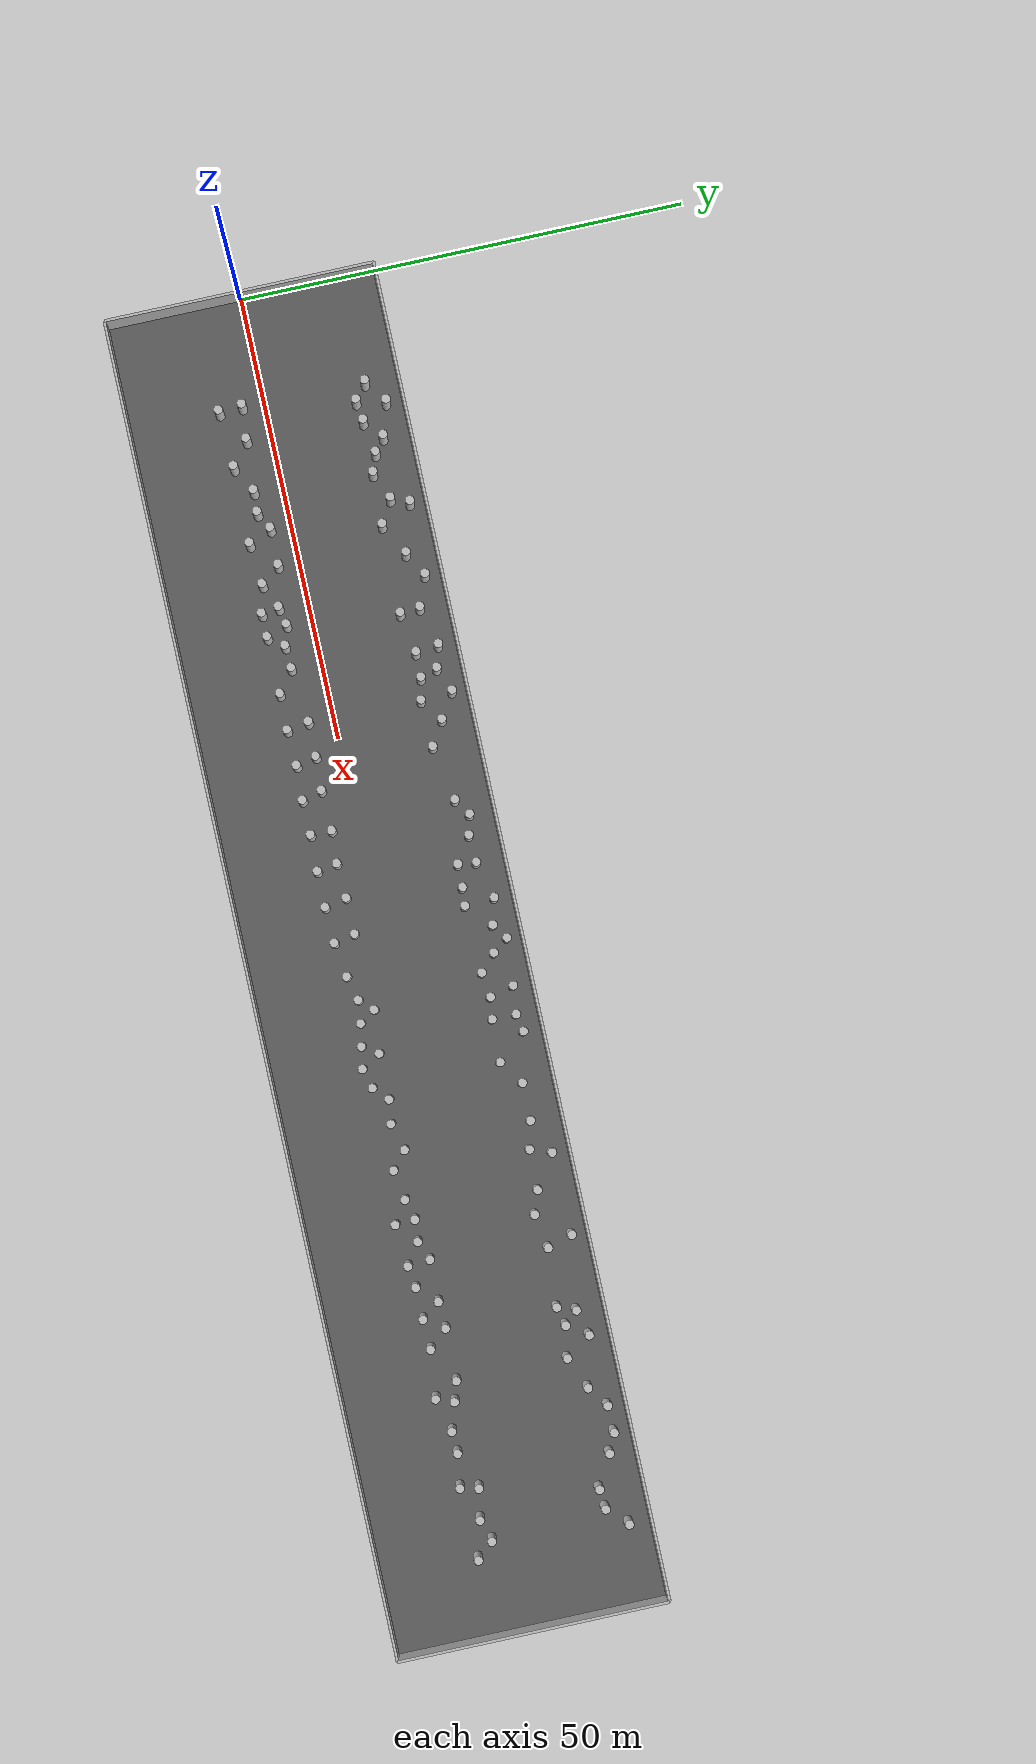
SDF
<?xml version="1.0" ?>
<sdf version="1.5">
  <world name="default">
    <plugin name="gazebo_ros_state" filename="libgazebo_ros_state.so">
      <ros>
        <namespace>/gazebo</namespace>
      </ros>
      <update_rate>20.0</update_rate>
    </plugin>

    <include><uri>model://sun</uri></include>
    <include><uri>model://ground_plane</uri></include>

    <model name="corridor_floor">
      <static>true</static>
      <pose>75 0 0.01 0 0 0</pose>
      <link name="link">
        <collision name="collision">
          <geometry><box><size>150 30 0.02</size></box></geometry>
        </collision>
        <visual name="visual">
          <geometry><box><size>150 30 0.02</size></box></geometry>
          <material>
            <ambient>0.25 0.25 0.25 1</ambient>
            <diffuse>0.35 0.35 0.35 1</diffuse>
          </material>
        </visual>
      </link>
    </model>

    <physics name="default_physics" default="0" type="ode">
      <gravity>0 0 -9.8066</gravity>
      <ode>
        <solver>
          <type>quick</type>
          <iters>10</iters>
          <sor>1.3</sor>
          <use_dynamic_moi_rescaling>0</use_dynamic_moi_rescaling>
        </solver>
        <constraints>
          <cfm>0</cfm>
          <erp>0.2</erp>
          <contact_max_correcting_vel>100</contact_max_correcting_vel>
          <contact_surface_layer>0.001</contact_surface_layer>
        </constraints>
      </ode>
      <max_step_size>0.004</max_step_size>
      <real_time_factor>1</real_time_factor>
      <real_time_update_rate>250</real_time_update_rate>
      <magnetic_field>6.0e-6 2.3e-5 -4.2e-5</magnetic_field>
    </physics>

    <model name="left_wall">
      <static>true</static>
      <pose>75 15.15 2.5 0 0 0</pose>
      <link name="link">
        <collision name="collision">
          <geometry><box><size>150 0.3 5</size></box></geometry>
        </collision>
        <visual name="visual">
          <geometry><box><size>150 0.3 5</size></box></geometry>
        </visual>
      </link>
    </model>

    <model name="right_wall">
      <static>true</static>
      <pose>75 -15.15 2.5 0 0 0</pose>
      <link name="link">
        <collision name="collision">
          <geometry><box><size>150 0.3 5</size></box></geometry>
        </collision>
        <visual name="visual">
          <geometry><box><size>150 0.3 5</size></box></geometry>
        </visual>
      </link>
    </model>

    <model name="start_wall">
      <static>true</static>
      <pose>0 0 2.5 0 0 0</pose>
      <link name="link">
        <collision name="collision">
          <geometry><box><size>0.3 30.3 5</size></box></geometry>
        </collision>
        <visual name="visual">
          <geometry><box><size>0.3 30.3 5</size></box></geometry>
        </visual>
      </link>
    </model>

    <model name="end_wall">
      <static>true</static>
      <pose>150 0 2.5 0 0 0</pose>
      <link name="link">
        <collision name="collision">
          <geometry><box><size>0.3 30.3 5</size></box></geometry>
        </collision>
        <visual name="visual">
          <geometry><box><size>0.3 30.3 5</size></box></geometry>
        </visual>
      </link>
    </model>

    <include><name>cylinder_000</name><uri>model://cylinder_r05_h5</uri><pose>24.073 -3.275 2.5 0 0 0</pose></include>
    <include><name>cylinder_001</name><uri>model://cylinder_r05_h5</uri><pose>15.930 -2.731 2.5 0 0 0</pose></include>
    <include><name>cylinder_002</name><uri>model://cylinder_r05_h5</uri><pose>27.254 -4.819 2.5 0 0 0</pose></include>
    <include><name>cylinder_003</name><uri>model://cylinder_r05_h5</uri><pose>37.754 -5.140 2.5 0 0 0</pose></include>
    <include><name>cylinder_004</name><uri>model://cylinder_r05_h5</uri><pose>21.650 -3.144 2.5 0 0 0</pose></include>
    <include><name>cylinder_005</name><uri>model://cylinder_r05_h5</uri><pose>41.673 -3.299 2.5 0 0 0</pose></include>
    <include><name>cylinder_006</name><uri>model://cylinder_r05_h5</uri><pose>18.606 -4.717 2.5 0 0 0</pose></include>
    <include><name>cylinder_007</name><uri>model://cylinder_r05_h5</uri><pose>31.963 -4.425 2.5 0 0 0</pose></include>
    <include><name>cylinder_008</name><uri>model://cylinder_r05_h5</uri><pose>44.165 -5.106 2.5 0 0 0</pose></include>
    <include><name>cylinder_009</name><uri>model://cylinder_r05_h5</uri><pose>36.844 -2.785 2.5 0 0 0</pose></include>
    <include><name>cylinder_010</name><uri>model://cylinder_r05_h5</uri><pose>34.801 -3.194 2.5 0 0 0</pose></include>
    <include><name>cylinder_011</name><uri>model://cylinder_r05_h5</uri><pose>26.088 -2.242 2.5 0 0 0</pose></include>
    <include><name>cylinder_012</name><uri>model://cylinder_r05_h5</uri><pose>39.127 -3.436 2.5 0 0 0</pose></include>
    <include><name>cylinder_013</name><uri>model://cylinder_r05_h5</uri><pose>35.093 -5.172 2.5 0 0 0</pose></include>
    <include><name>cylinder_014</name><uri>model://cylinder_r05_h5</uri><pose>30.239 -2.270 2.5 0 0 0</pose></include>
    <include><name>cylinder_015</name><uri>model://cylinder_r05_h5</uri><pose>48.239 -5.177 2.5 0 0 0</pose></include>
    <include><name>cylinder_016</name><uri>model://cylinder_r05_h5</uri><pose>47.851 -2.712 2.5 0 0 0</pose></include>
    <include><name>cylinder_017</name><uri>model://cylinder_r05_h5</uri><pose>52.275 -5.007 2.5 0 0 0</pose></include>
    <include><name>cylinder_018</name><uri>model://cylinder_r05_h5</uri><pose>51.749 -2.739 2.5 0 0 0</pose></include>
    <include><name>cylinder_019</name><uri>model://cylinder_r05_h5</uri><pose>56.143 -5.197 2.5 0 0 0</pose></include>
    <include><name>cylinder_020</name><uri>model://cylinder_r05_h5</uri><pose>55.517 -2.922 2.5 0 0 0</pose></include>
    <include><name>cylinder_021</name><uri>model://cylinder_r05_h5</uri><pose>60.040 -5.135 2.5 0 0 0</pose></include>
    <include><name>cylinder_022</name><uri>model://cylinder_r05_h5</uri><pose>60.066 -2.771 2.5 0 0 0</pose></include>
    <include><name>cylinder_023</name><uri>model://cylinder_r05_h5</uri><pose>64.117 -5.263 2.5 0 0 0</pose></include>
    <include><name>cylinder_024</name><uri>model://cylinder_r05_h5</uri><pose>63.720 -3.006 2.5 0 0 0</pose></include>
    <include><name>cylinder_025</name><uri>model://cylinder_r05_h5</uri><pose>68.153 -5.271 2.5 0 0 0</pose></include>
    <include><name>cylinder_026</name><uri>model://cylinder_r05_h5</uri><pose>67.628 -2.803 2.5 0 0 0</pose></include>
    <include><name>cylinder_027</name><uri>model://cylinder_r05_h5</uri><pose>72.203 -5.120 2.5 0 0 0</pose></include>
    <include><name>cylinder_028</name><uri>model://cylinder_r05_h5</uri><pose>71.684 -2.754 2.5 0 0 0</pose></include>
    <include><name>cylinder_029</name><uri>model://cylinder_r05_h5</uri><pose>81.405 -4.191 2.5 0 0 0</pose></include>
    <include><name>cylinder_030</name><uri>model://cylinder_r05_h5</uri><pose>95.919 -2.479 2.5 0 0 0</pose></include>
    <include><name>cylinder_031</name><uri>model://cylinder_r05_h5</uri><pose>97.853 -4.118 2.5 0 0 0</pose></include>
    <include><name>cylinder_032</name><uri>model://cylinder_r05_h5</uri><pose>92.854 -3.317 2.5 0 0 0</pose></include>
    <include><name>cylinder_033</name><uri>model://cylinder_r05_h5</uri><pose>78.852 -3.908 2.5 0 0 0</pose></include>
    <include><name>cylinder_034</name><uri>model://cylinder_r05_h5</uri><pose>85.049 -2.910 2.5 0 0 0</pose></include>
    <include><name>cylinder_035</name><uri>model://cylinder_r05_h5</uri><pose>76.070 -4.604 2.5 0 0 0</pose></include>
    <include><name>cylinder_036</name><uri>model://cylinder_r05_h5</uri><pose>103.567 -3.007 2.5 0 0 0</pose></include>
    <include><name>cylinder_037</name><uri>model://cylinder_r05_h5</uri><pose>103.686 -5.224 2.5 0 0 0</pose></include>
    <include><name>cylinder_038</name><uri>model://cylinder_r05_h5</uri><pose>90.164 -2.943 2.5 0 0 0</pose></include>
    <include><name>cylinder_039</name><uri>model://cylinder_r05_h5</uri><pose>101.243 -3.601 2.5 0 0 0</pose></include>
    <include><name>cylinder_040</name><uri>model://cylinder_r05_h5</uri><pose>88.576 -4.447 2.5 0 0 0</pose></include>
    <include><name>cylinder_041</name><uri>model://cylinder_r05_h5</uri><pose>83.892 -4.656 2.5 0 0 0</pose></include>
    <include><name>cylinder_042</name><uri>model://cylinder_r05_h5</uri><pose>86.311 -5.071 2.5 0 0 0</pose></include>
    <include><name>cylinder_043</name><uri>model://cylinder_r05_h5</uri><pose>80.238 -2.437 2.5 0 0 0</pose></include>
    <include><name>cylinder_044</name><uri>model://cylinder_r05_h5</uri><pose>115.857 -2.294 2.5 0 0 0</pose></include>
    <include><name>cylinder_045</name><uri>model://cylinder_r05_h5</uri><pose>106.006 -3.227 2.5 0 0 0</pose></include>
    <include><name>cylinder_046</name><uri>model://cylinder_r05_h5</uri><pose>108.200 -2.318 2.5 0 0 0</pose></include>
    <include><name>cylinder_047</name><uri>model://cylinder_r05_h5</uri><pose>114.393 -4.465 2.5 0 0 0</pose></include>
    <include><name>cylinder_048</name><uri>model://cylinder_r05_h5</uri><pose>123.113 -4.984 2.5 0 0 0</pose></include>
    <include><name>cylinder_049</name><uri>model://cylinder_r05_h5</uri><pose>117.751 -4.361 2.5 0 0 0</pose></include>
    <include><name>cylinder_050</name><uri>model://cylinder_r05_h5</uri><pose>110.828 -4.502 2.5 0 0 0</pose></include>
    <include><name>cylinder_051</name><uri>model://cylinder_r05_h5</uri><pose>123.861 -3.038 2.5 0 0 0</pose></include>
    <include><name>cylinder_052</name><uri>model://cylinder_r05_h5</uri><pose>133.130 -4.481 2.5 0 0 0</pose></include>
    <include><name>cylinder_053</name><uri>model://cylinder_r05_h5</uri><pose>121.675 -2.347 2.5 0 0 0</pose></include>
    <include><name>cylinder_054</name><uri>model://cylinder_r05_h5</uri><pose>112.848 -2.424 2.5 0 0 0</pose></include>
    <include><name>cylinder_055</name><uri>model://cylinder_r05_h5</uri><pose>108.376 -4.823 2.5 0 0 0</pose></include>
    <include><name>cylinder_056</name><uri>model://cylinder_r05_h5</uri><pose>129.402 -3.941 2.5 0 0 0</pose></include>
    <include><name>cylinder_057</name><uri>model://cylinder_r05_h5</uri><pose>133.613 -2.458 2.5 0 0 0</pose></include>
    <include><name>cylinder_058</name><uri>model://cylinder_r05_h5</uri><pose>126.954 -4.008 2.5 0 0 0</pose></include>
    <include><name>cylinder_059</name><uri>model://cylinder_r05_h5</uri><pose>12.251 -5.004 2.5 0 0 0</pose></include>
    <include><name>cylinder_060</name><uri>model://cylinder_r05_h5</uri><pose>12.136 -2.395 2.5 0 0 0</pose></include>
    <include><name>cylinder_061</name><uri>model://cylinder_r05_h5</uri><pose>137.001 -3.081 2.5 0 0 0</pose></include>
    <include><name>cylinder_062</name><uri>model://cylinder_r05_h5</uri><pose>141.185 -4.204 2.5 0 0 0</pose></include>
    <include><name>cylinder_063</name><uri>model://cylinder_r05_h5</uri><pose>139.513 -2.320 2.5 0 0 0</pose></include>
    <include><name>cylinder_064</name><uri>model://cylinder_r05_h5</uri><pose>66.656 9.935 2.5 0 0 0</pose></include>
    <include><name>cylinder_065</name><uri>model://cylinder_r05_h5</uri><pose>50.732 11.649 2.5 0 0 0</pose></include>
    <include><name>cylinder_066</name><uri>model://cylinder_r05_h5</uri><pose>38.303 9.708 2.5 0 0 0</pose></include>
    <include><name>cylinder_067</name><uri>model://cylinder_r05_h5</uri><pose>76.978 11.699 2.5 0 0 0</pose></include>
    <include><name>cylinder_068</name><uri>model://cylinder_r05_h5</uri><pose>98.786 10.889 2.5 0 0 0</pose></include>
    <include><name>cylinder_069</name><uri>model://cylinder_r05_h5</uri><pose>42.882 10.461 2.5 0 0 0</pose></include>
    <include><name>cylinder_070</name><uri>model://cylinder_r05_h5</uri><pose>59.664 11.134 2.5 0 0 0</pose></include>
    <include><name>cylinder_071</name><uri>model://cylinder_r05_h5</uri><pose>84.058 12.634 2.5 0 0 0</pose></include>
    <include><name>cylinder_072</name><uri>model://cylinder_r05_h5</uri><pose>61.551 12.371 2.5 0 0 0</pose></include>
    <include><name>cylinder_073</name><uri>model://cylinder_r05_h5</uri><pose>38.122 11.953 2.5 0 0 0</pose></include>
    <include><name>cylinder_074</name><uri>model://cylinder_r05_h5</uri><pose>73.973 12.239 2.5 0 0 0</pose></include>
    <include><name>cylinder_075</name><uri>model://cylinder_r05_h5</uri><pose>69.246 9.881 2.5 0 0 0</pose></include>
    <include><name>cylinder_076</name><uri>model://cylinder_r05_h5</uri><pose>53.436 10.029 2.5 0 0 0</pose></include>
    <include><name>cylinder_077</name><uri>model://cylinder_r05_h5</uri><pose>116.219 10.064 2.5 0 0 0</pose></include>
    <include><name>cylinder_078</name><uri>model://cylinder_r05_h5</uri><pose>88.822 9.805 2.5 0 0 0</pose></include>
    <include><name>cylinder_079</name><uri>model://cylinder_r05_h5</uri><pose>34.706 13.272 2.5 0 0 0</pose></include>
    <include><name>cylinder_080</name><uri>model://cylinder_r05_h5</uri><pose>105.855 9.882 2.5 0 0 0</pose></include>
    <include><name>cylinder_081</name><uri>model://cylinder_r05_h5</uri><pose>91.541 11.690 2.5 0 0 0</pose></include>
    <include><name>cylinder_082</name><uri>model://cylinder_r05_h5</uri><pose>138.742 10.530 2.5 0 0 0</pose></include>
    <include><name>cylinder_083</name><uri>model://cylinder_r05_h5</uri><pose>99.650 13.203 2.5 0 0 0</pose></include>
    <include><name>cylinder_084</name><uri>model://cylinder_r05_h5</uri><pose>95.757 11.664 2.5 0 0 0</pose></include>
    <include><name>cylinder_085</name><uri>model://cylinder_r05_h5</uri><pose>31.938 11.751 2.5 0 0 0</pose></include>
    <include><name>cylinder_086</name><uri>model://cylinder_r05_h5</uri><pose>45.067 12.302 2.5 0 0 0</pose></include>
    <include><name>cylinder_087</name><uri>model://cylinder_r05_h5</uri><pose>116.988 12.076 2.5 0 0 0</pose></include>
    <include><name>cylinder_088</name><uri>model://cylinder_r05_h5</uri><pose>20.396 10.858 2.5 0 0 0</pose></include>
    <include><name>cylinder_089</name><uri>model://cylinder_r05_h5</uri><pose>47.862 13.427 2.5 0 0 0</pose></include>
    <include><name>cylinder_090</name><uri>model://cylinder_r05_h5</uri><pose>25.659 11.365 2.5 0 0 0</pose></include>
    <include><name>cylinder_091</name><uri>model://cylinder_r05_h5</uri><pose>66.864 11.957 2.5 0 0 0</pose></include>
    <include><name>cylinder_092</name><uri>model://cylinder_r05_h5</uri><pose>130.850 13.219 2.5 0 0 0</pose></include>
    <include><name>cylinder_093</name><uri>model://cylinder_r05_h5</uri><pose>14.308 9.994 2.5 0 0 0</pose></include>
    <include><name>cylinder_094</name><uri>model://cylinder_r05_h5</uri><pose>119.926 12.869 2.5 0 0 0</pose></include>
    <include><name>cylinder_095</name><uri>model://cylinder_r05_h5</uri><pose>132.984 12.261 2.5 0 0 0</pose></include>
    <include><name>cylinder_096</name><uri>model://cylinder_r05_h5</uri><pose>127.871 13.169 2.5 0 0 0</pose></include>
    <include><name>cylinder_097</name><uri>model://cylinder_r05_h5</uri><pose>86.064 13.009 2.5 0 0 0</pose></include>
    <include><name>cylinder_098</name><uri>model://cylinder_r05_h5</uri><pose>80.939 12.982 2.5 0 0 0</pose></include>
    <include><name>cylinder_099</name><uri>model://cylinder_r05_h5</uri><pose>18.798 12.069 2.5 0 0 0</pose></include>
    <include><name>cylinder_100</name><uri>model://cylinder_r05_h5</uri><pose>109.700 10.542 2.5 0 0 0</pose></include>
    <include><name>cylinder_101</name><uri>model://cylinder_r05_h5</uri><pose>136.535 10.333 2.5 0 0 0</pose></include>
    <include><name>cylinder_102</name><uri>model://cylinder_r05_h5</uri><pose>63.779 11.807 2.5 0 0 0</pose></include>
    <include><name>cylinder_103</name><uri>model://cylinder_r05_h5</uri><pose>16.658 10.283 2.5 0 0 0</pose></include>
    <include><name>cylinder_104</name><uri>model://cylinder_r05_h5</uri><pose>48.183 9.867 2.5 0 0 0</pose></include>
    <include><name>cylinder_105</name><uri>model://cylinder_r05_h5</uri><pose>81.644 10.301 2.5 0 0 0</pose></include>
    <include><name>cylinder_106</name><uri>model://cylinder_r05_h5</uri><pose>108.858 13.375 2.5 0 0 0</pose></include>
    <include><name>cylinder_107</name><uri>model://cylinder_r05_h5</uri><pose>78.833 9.947 2.5 0 0 0</pose></include>
    <include><name>cylinder_108</name><uri>model://cylinder_r05_h5</uri><pose>71.285 9.704 2.5 0 0 0</pose></include>
    <include><name>cylinder_109</name><uri>model://cylinder_r05_h5</uri><pose>15.054 13.222 2.5 0 0 0</pose></include>
    <include><name>cylinder_110</name><uri>model://cylinder_r05_h5</uri><pose>71.064 13.043 2.5 0 0 0</pose></include>
    <include><name>cylinder_111</name><uri>model://cylinder_r05_h5</uri><pose>103.293 10.762 2.5 0 0 0</pose></include>
    <include><name>cylinder_112</name><uri>model://cylinder_r05_h5</uri><pose>42.566 13.047 2.5 0 0 0</pose></include>
    <include><name>cylinder_113</name><uri>model://cylinder_r05_h5</uri><pose>84.048 9.968 2.5 0 0 0</pose></include>
    <include><name>cylinder_114</name><uri>model://cylinder_r05_h5</uri><pose>28.339 9.859 2.5 0 0 0</pose></include>
    <include><name>cylinder_115</name><uri>model://cylinder_r05_h5</uri><pose>140.906 12.672 2.5 0 0 0</pose></include>
    <include><name>cylinder_116</name><uri>model://cylinder_r05_h5</uri><pose>22.516 10.106 2.5 0 0 0</pose></include>
    <include><name>cylinder_117</name><uri>model://cylinder_r05_h5</uri><pose>118.364 10.575 2.5 0 0 0</pose></include>
    <include><name>cylinder_118</name><uri>model://cylinder_r05_h5</uri><pose>45.738 10.397 2.5 0 0 0</pose></include>
    <include><name>cylinder_119</name><uri>model://cylinder_r05_h5</uri><pose>121.894 9.984 2.5 0 0 0</pose></include>
    <include><name>cylinder_120</name><uri>model://cylinder_r05_h5</uri><pose>125.508 11.494 2.5 0 0 0</pose></include>
    <include><name>cylinder_121</name><uri>model://cylinder_r05_h5</uri><pose>26.519 13.389 2.5 0 0 0</pose></include>
    <include><name>cylinder_122</name><uri>model://cylinder_r05_h5</uri><pose>75.686 13.454 2.5 0 0 0</pose></include>
    <include><name>cylinder_123</name><uri>model://cylinder_r05_h5</uri><pose>12.453 11.401 2.5 0 0 0</pose></include>

  </world>
</sdf>

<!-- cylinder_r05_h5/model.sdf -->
<sdf version="1.5">
  <model name="cylinder_r05_h5">
    <static>true</static>
    <link name="link">
      <collision name="collision">
        <geometry>
          <cylinder>
            <radius>0.5</radius>
            <length>5</length>
          </cylinder>
        </geometry>
      </collision>
      <visual name="visual">
        <geometry>
          <cylinder>
            <radius>0.5</radius>
            <length>5</length>
          </cylinder>
        </geometry>
        <material>
          <ambient>0.5 0.5 0.5 1</ambient>
          <diffuse>0.75 0.75 0.75 1</diffuse>
        </material>
      </visual>
    </link>
  </model>
</sdf>
